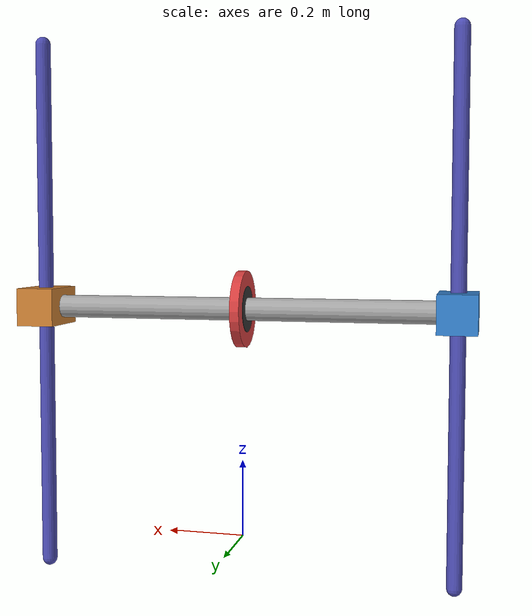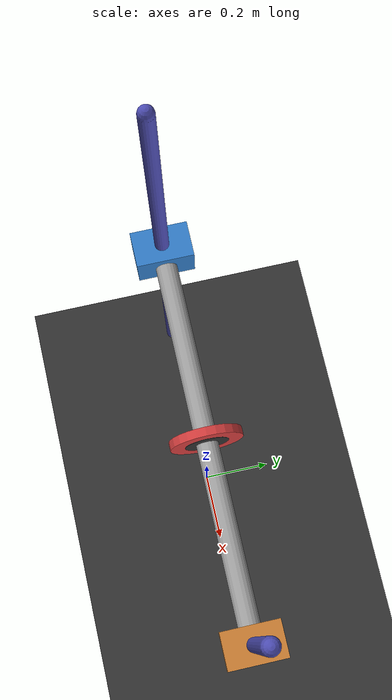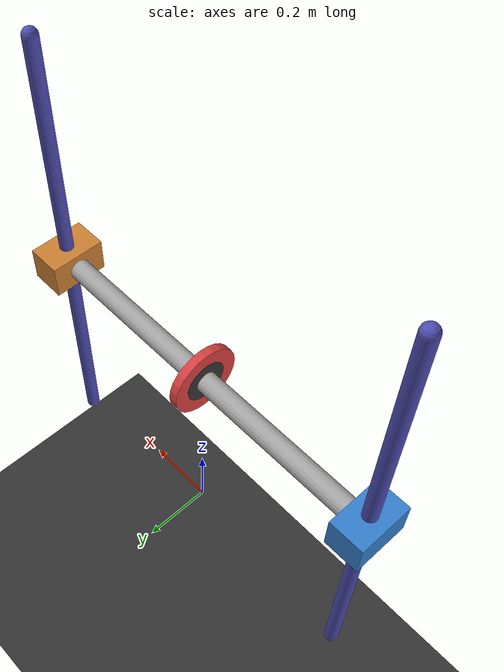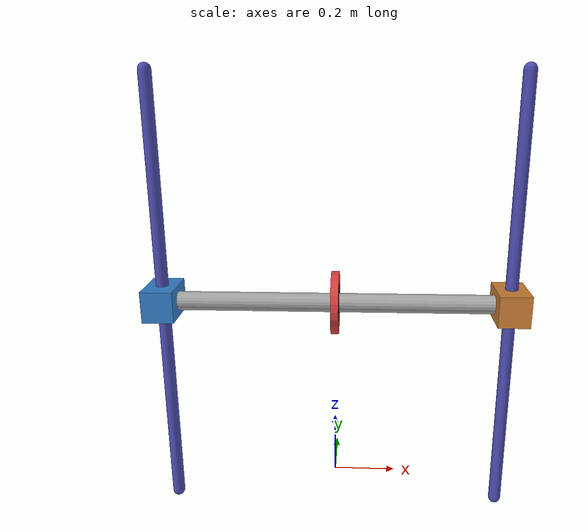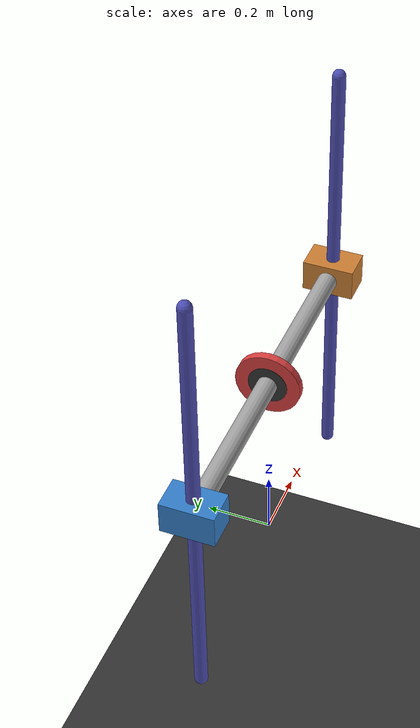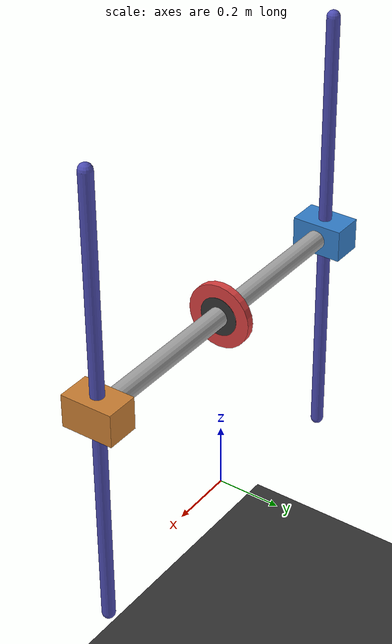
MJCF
<mujoco model="dual_rail_ring_balance">
    <compiler inertiafromgeom="true" angle="degree"/>
    <option gravity="0 0 -9.81" integrator="RK4" timestep="0.02"/>
    <size nconmax="120" njmax="200" nstack="5000"/>

    <default>
        <joint armature="0" damping="1.5" limited="true"/>
        <geom contype="0" friction="1.0 0.05 0.05" rgba="0.5 0.6 0.7 1"/>
        <motor ctrllimited="true" ctrlrange="-3 3"/>
    </default>

    <worldbody>
        <geom name="floor" type="plane" pos="0 0 -1" size="2 2 0.1" rgba="0.2 0.2 0.2 1"/>

        <body name="left_rail" pos="-0.55 0 0.6">
            <geom name="left_rail_geom" type="capsule" fromto="0 0 -0.7 0 0 0.7" size="0.02" rgba="0.3 0.3 0.7 1"/>
            <body name="left_cart" pos="0 0 0">
                <joint name="left_slider" type="slide" axis="0 0 1" range="-0.5 0.5"/>
                <geom name="left_cart_geom" type="box" size="0.05 0.08 0.05" rgba="0.2 0.5 0.8 1"/>
                <site name="left_attach" pos="0 0 0" size="0.015"/>
            </body>
        </body>

        <body name="right_rail" pos="0.55 0 0.6">
            <geom name="right_rail_geom" type="capsule" fromto="0 0 -0.7 0 0 0.7" size="0.02" rgba="0.3 0.3 0.7 1"/>
            <body name="right_cart" pos="0 0 0">
                <joint name="right_slider" type="slide" axis="0 0 1" range="-0.5 0.5"/>
                <joint name="right_slide_x" type="slide" axis="1 0 0" range="-0.1 0.1" damping="0.2"/>
                <geom name="right_cart_geom" type="box" size="0.05 0.08 0.05" rgba="0.8 0.5 0.2 1"/>
                <site name="right_attach" pos="0 0 0" size="0.015"/>
            </body>
        </body>

        <body name="crossbar" pos="0 0 0.6">
            <joint name="bar_free" type="free"/>
            <geom name="crossbar_geom" type="capsule" fromto="-0.55 0 0 0.55 0 0" size="0.03 0.55" rgba="0.65 0.65 0.65 1" density="900"/>
            <site name="bar_left" pos="-0.55 0 0" size="0.015"/>
            <site name="bar_right" pos="0.55 0 0" size="0.015"/>

            <body name="ring_carriage" pos="0 0 0">
                <joint name="ring_slide" type="slide" axis="1 0 0" range="-0.35 0.35" damping="0.1"/>
                <geom name="ring_outer" type="cylinder" size="0.1 0.012" rgba="0.85 0.25 0.25 1" euler="0 90 0" contype="1" conaffinity="1" density="850"/>
                <geom name="ring_inner" type="cylinder" size="0.06 0.013" rgba="0.2 0.2 0.2 1" euler="0 90 0" contype="0" conaffinity="0" density="50"/>
                <site name="ring_site" pos="0 0 0" size="0.02"/>
            </body>
        </body>
    </worldbody>

    <equality>
        <connect site1="left_attach" site2="bar_left"/>
        <connect site1="right_attach" site2="bar_right"/>
    </equality>

    <actuator>
        <motor name="left_actuator" joint="left_slider" gear="220"/>
        <motor name="right_actuator" joint="right_slider" gear="220"/>
    </actuator>
</mujoco>
